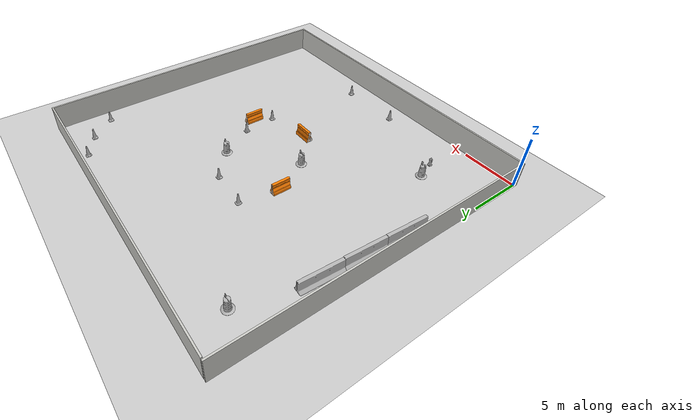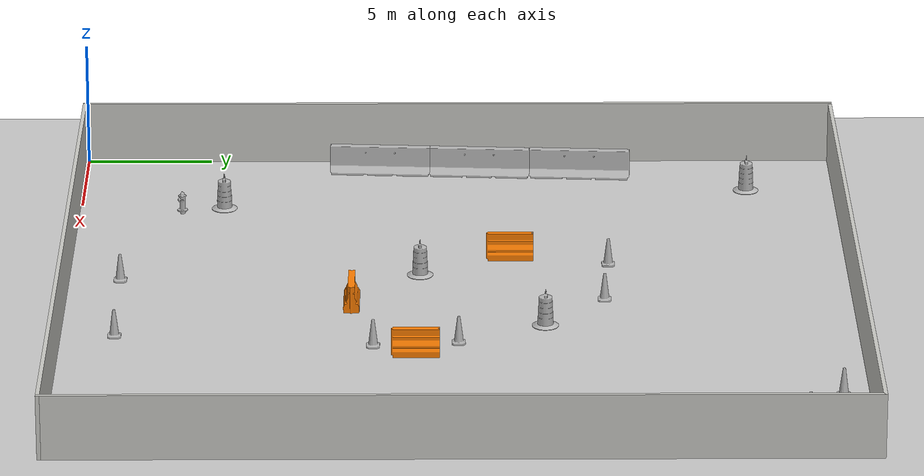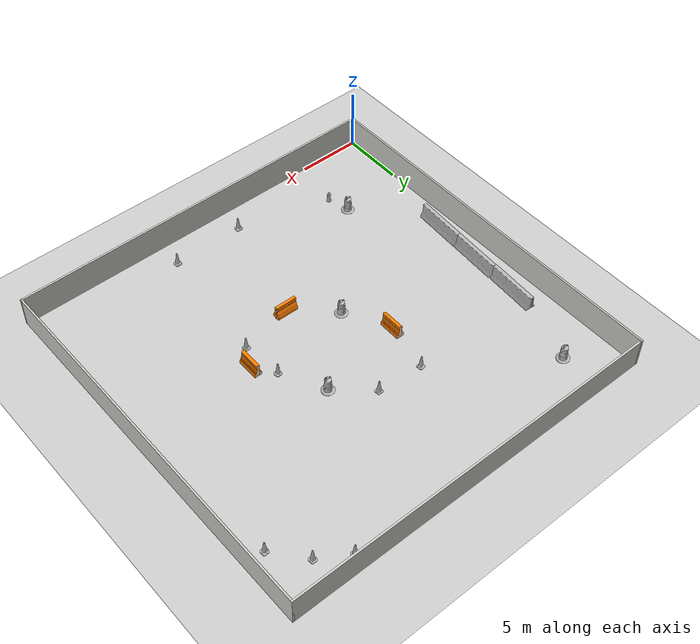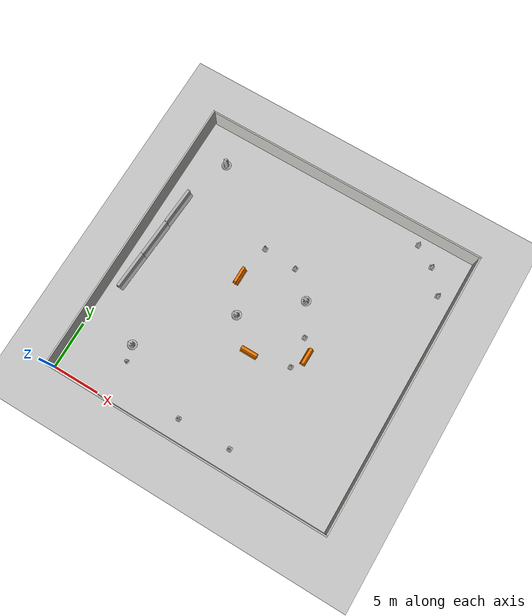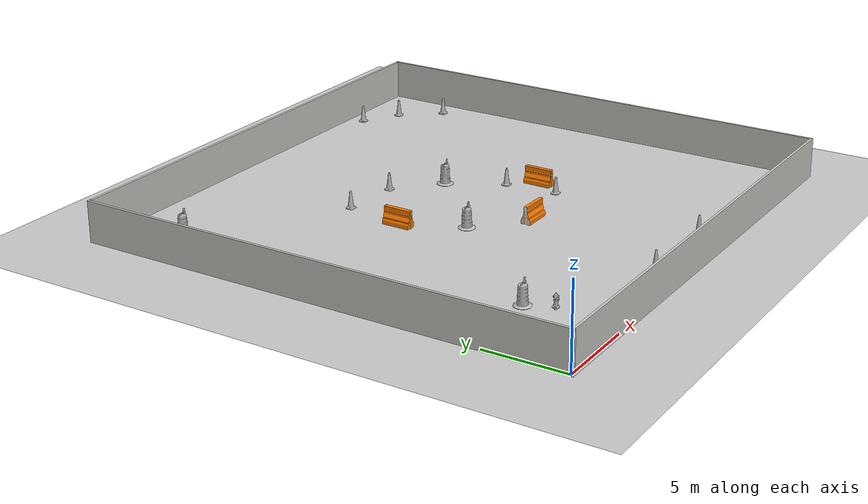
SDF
<sdf version="1.6">
 <world name="default">
  <light name="sun" type="directional">
   <pose>0 0 10 0 -0 0</pose>
   <diffuse>0.8 0.8 0.8 1</diffuse>
   <specular>0.2 0.2 0.2 1</specular>
   <attenuation>
    <range>1000</range>
    <constant>0.9</constant>
    <linear>0.01</linear>
    <quadratic>0.001</quadratic>
   </attenuation>
   <direction>-0.5 0.1 -0.9</direction>
  </light>
  <model name="ground_plane">
   <static>1</static>
   <link name="link">
    <collision name="collision">
     <geometry><plane><normal>0 0 1</normal><size>100 100</size></plane></geometry>
     <surface>
      <contact><collide_bitmask>65535</collide_bitmask></contact>
      <friction><ode><mu>100</mu><mu2>50</mu2></ode></friction>
     </surface>
    </collision>
    <visual name="visual">
     <cast_shadows>0</cast_shadows>
     <geometry><plane><normal>0 0 1</normal><size>100 100</size></plane></geometry>
     <material>
      <script><uri>file://media/materials/scripts/gazebo.material</uri><name>Gazebo/Grey</name></script>
     </material>
    </visual>
   </link>
  </model>
  <gravity>0 0 -9.8</gravity>
  <magnetic_field>6e-06 2.3e-05 -4.2e-05</magnetic_field>
  <atmosphere type="adiabatic"/>
  <physics name="default_physics" default="0" type="ode">
   <max_step_size>0.001</max_step_size>
   <real_time_factor>1</real_time_factor>
   <real_time_update_rate>1000</real_time_update_rate>
  </physics>
  <scene><ambient>0.4 0.4 0.4 1</ambient><background>0.7 0.7 0.7 1</background><shadows>1</shadows></scene>
  <spherical_coordinates>
   <surface_model>EARTH_WGS84</surface_model>
   <latitude_deg>0</latitude_deg>
   <longitude_deg>0</longitude_deg>
   <elevation>0</elevation>
   <heading_deg>0</heading_deg>
  </spherical_coordinates>
  <model name="Untitled">
   <pose>15.1958 15.0368 0 0 -0 0</pose>
   <link name="Wall_0">
    <collision name="Wall_0_Collision">
     <geometry><box><size>30.5 0.15 2.5</size></box></geometry>
     <pose>0 0 1.25 0 -0 0</pose>
    </collision>
    <visual name="Wall_0_Visual">
     <pose>0 0 1.25 0 -0 0</pose>
     <geometry><box><size>30.5 0.15 2.5</size></box></geometry>
     <material>
      <script><uri>file://media/materials/scripts/gazebo.material</uri><name>Gazebo/CeilingTiled</name></script>
      <ambient>1 1 1 1</ambient>
     </material>
     <meta><layer>0</layer></meta>
    </visual>
    <pose>0.124999 15.175 0 0 -0 0</pose>
   </link>
   <link name="Wall_1">
    <collision name="Wall_1_Collision">
     <geometry><box><size>30.5 0.15 2.5</size></box></geometry>
     <pose>0 0 1.25 0 -0 0</pose>
    </collision>
    <visual name="Wall_1_Visual">
     <pose>0 0 1.25 0 -0 0</pose>
     <geometry><box><size>30.5 0.15 2.5</size></box></geometry>
     <material>
      <script><uri>file://media/materials/scripts/gazebo.material</uri><name>Gazebo/CeilingTiled</name></script>
      <ambient>1 1 1 1</ambient>
     </material>
     <meta><layer>0</layer></meta>
    </visual>
    <pose>15.3 0 0 0 -0 -1.5708</pose>
   </link>
   <link name="Wall_2">
    <collision name="Wall_2_Collision">
     <geometry><box><size>30.75 0.15 2.5</size></box></geometry>
     <pose>0 0 1.25 0 -0 0</pose>
    </collision>
    <visual name="Wall_2_Visual">
     <pose>0 0 1.25 0 -0 0</pose>
     <geometry><box><size>30.75 0.15 2.5</size></box></geometry>
     <material>
      <script><uri>file://media/materials/scripts/gazebo.material</uri><name>Gazebo/CeilingTiled</name></script>
      <ambient>1 1 1 1</ambient>
     </material>
     <meta><layer>0</layer></meta>
    </visual>
    <pose>-1e-06 -15.175 0 0 -0 3.14159</pose>
   </link>
   <link name="Wall_3">
    <collision name="Wall_3_Collision">
     <geometry><box><size>30.5 0.15 2.5</size></box></geometry>
     <pose>0 0 1.25 0 -0 0</pose>
    </collision>
    <visual name="Wall_3_Visual">
     <pose>0 0 1.25 0 -0 0</pose>
     <geometry><box><size>30.5 0.15 2.5</size></box></geometry>
     <material>
      <script><uri>file://media/materials/scripts/gazebo.material</uri><name>Gazebo/CeilingTiled</name></script>
      <ambient>1 1 1 1</ambient>
     </material>
     <meta><layer>0</layer></meta>
    </visual>
    <pose>-15.3 0 0 0 -0 1.5708</pose>
   </link>
   <static>1</static>
  </model>
  <model name="Construction Barrel">
   <link name="link">
    <inertial>
     <pose>0 0 0.4 0 -0 0</pose>
     <mass>500</mass>
     <inertia><ixx>51.2096</ixx><iyy>51.2096</iyy><izz>25</izz><ixy>0</ixy><ixz>0</ixz><iyz>0</iyz></inertia>
    </inertial>
    <collision name="collision">
     <geometry><mesh><uri>model://construction_barrel/meshes/construction_barrel.dae</uri></mesh></geometry>
    </collision>
    <visual name="visual">
     <geometry><mesh><uri>model://construction_barrel/meshes/construction_barrel.dae</uri></mesh></geometry>
    </visual>
   </link>
   <pose>5.34222 5.70017 -2e-06 -5e-06 -4e-06 -5.7e-05</pose>
  </model>
  <model name="Construction Cone">
   <link name="link">
    <collision name="collision">
     <geometry>
      <mesh><scale>10 10 10</scale><uri>model://construction_cone/meshes/construction_cone.dae</uri></mesh>
     </geometry>
    </collision>
    <visual name="visual">
     <geometry>
      <mesh><scale>10 10 10</scale><uri>model://construction_cone/meshes/construction_cone.dae</uri></mesh>
     </geometry>
    </visual>
    <inertial>
     <inertia><ixx>1</ixx><ixy>0</ixy><ixz>0</ixz><iyy>1</iyy><iyz>0</iyz><izz>1</izz></inertia>
     <mass>1</mass>
    </inertial>
   </link>
   <pose>13.1332 1.9175 -1e-05 -1e-06 0 0</pose>
  </model>
  <model name="Construction Barrel_0">
   <link name="link">
    <inertial>
     <pose>0 0 0.4 0 -0 0</pose>
     <mass>500</mass>
     <inertia><ixx>51.2096</ixx><iyy>51.2096</iyy><izz>25</izz><ixy>0</ixy><ixz>0</ixz><iyz>0</iyz></inertia>
    </inertial>
    <collision name="collision">
     <geometry><mesh><uri>model://construction_barrel/meshes/construction_barrel.dae</uri></mesh></geometry>
    </collision>
    <visual name="visual">
     <geometry><mesh><uri>model://construction_barrel/meshes/construction_barrel.dae</uri></mesh></geometry>
    </visual>
   </link>
   <pose>3.41373 26.6506 1e-06 3e-06 2e-06 -5.5e-05</pose>
  </model>
  <model name="Construction Cone_0">
   <link name="link">
    <collision name="collision">
     <geometry>
      <mesh><scale>10 10 10</scale><uri>model://construction_cone/meshes/construction_cone.dae</uri></mesh>
     </geometry>
    </collision>
    <visual name="visual">
     <geometry>
      <mesh><scale>10 10 10</scale><uri>model://construction_cone/meshes/construction_cone.dae</uri></mesh>
     </geometry>
    </visual>
    <inertial>
     <inertia><ixx>1</ixx><ixy>0</ixy><ixz>0</ixz><iyy>1</iyy><iyz>0</iyz><izz>1</izz></inertia>
     <mass>1</mass>
    </inertial>
   </link>
   <pose>19.8885 11.766 -0 0 -1e-06 0</pose>
  </model>
  <model name="Construction Cone_1">
   <link name="link">
    <collision name="collision">
     <geometry>
      <mesh><scale>10 10 10</scale><uri>model://construction_cone/meshes/construction_cone.dae</uri></mesh>
     </geometry>
    </collision>
    <visual name="visual">
     <geometry>
      <mesh><scale>10 10 10</scale><uri>model://construction_cone/meshes/construction_cone.dae</uri></mesh>
     </geometry>
    </visual>
    <inertial>
     <inertia><ixx>1</ixx><ixy>0</ixy><ixz>0</ixz><iyy>1</iyy><iyz>0</iyz><izz>1</izz></inertia>
     <mass>1</mass>
    </inertial>
   </link>
   <pose>11.5682 20.8579 -0 0 -1e-06 0</pose>
  </model>
  <model name="Construction Cone_2">
   <link name="link">
    <collision name="collision">
     <geometry>
      <mesh><scale>10 10 10</scale><uri>model://construction_cone/meshes/construction_cone.dae</uri></mesh>
     </geometry>
    </collision>
    <visual name="visual">
     <geometry>
      <mesh><scale>10 10 10</scale><uri>model://construction_cone/meshes/construction_cone.dae</uri></mesh>
     </geometry>
    </visual>
    <inertial>
     <inertia><ixx>1</ixx><ixy>0</ixy><ixz>0</ixz><iyy>1</iyy><iyz>0</iyz><izz>1</izz></inertia>
     <mass>1</mass>
    </inertial>
   </link>
   <pose>19.5923 14.9944 0 -0 -0 -0</pose>
  </model>
  <model name="Construction Cone_3">
   <link name="link">
    <collision name="collision">
     <geometry>
      <mesh><scale>10 10 10</scale><uri>model://construction_cone/meshes/construction_cone.dae</uri></mesh>
     </geometry>
    </collision>
    <visual name="visual">
     <geometry>
      <mesh><scale>10 10 10</scale><uri>model://construction_cone/meshes/construction_cone.dae</uri></mesh>
     </geometry>
    </visual>
    <inertial>
     <inertia><ixx>1</ixx><ixy>0</ixy><ixz>0</ixz><iyy>1</iyy><iyz>0</iyz><izz>1</izz></inertia>
     <mass>1</mass>
    </inertial>
   </link>
   <pose>15.235 20.6143 -1e-05 -1e-06 -0 -0</pose>
  </model>
  <model name="Construction Barrel_1">
   <link name="link">
    <inertial>
     <pose>0 0 0.4 0 -0 0</pose>
     <mass>500</mass>
     <inertia><ixx>51.2096</ixx><iyy>51.2096</iyy><izz>25</izz><ixy>0</ixy><ixz>0</ixz><iyz>0</iyz></inertia>
    </inertial>
    <collision name="collision">
     <geometry><mesh><uri>model://construction_barrel/meshes/construction_barrel.dae</uri></mesh></geometry>
    </collision>
    <visual name="visual">
     <geometry><mesh><uri>model://construction_barrel/meshes/construction_barrel.dae</uri></mesh></geometry>
    </visual>
   </link>
   <pose>17.8467 18.2945 -0 0 -0 -3.8e-05</pose>
  </model>
  <model name="Construction Cone_4">
   <link name="link">
    <collision name="collision">
     <geometry>
      <mesh><scale>10 10 10</scale><uri>model://construction_cone/meshes/construction_cone.dae</uri></mesh>
     </geometry>
    </collision>
    <visual name="visual">
     <geometry>
      <mesh><scale>10 10 10</scale><uri>model://construction_cone/meshes/construction_cone.dae</uri></mesh>
     </geometry>
    </visual>
    <inertial>
     <inertia><ixx>1</ixx><ixy>0</ixy><ixz>0</ixz><iyy>1</iyy><iyz>0</iyz><izz>1</izz></inertia>
     <mass>1</mass>
    </inertial>
   </link>
   <pose>24.728 29.1581 -3e-06 -3e-06 -1e-06 -0</pose>
  </model>
  <model name="Construction Cone_5">
   <link name="link">
    <collision name="collision">
     <geometry>
      <mesh><scale>10 10 10</scale><uri>model://construction_cone/meshes/construction_cone.dae</uri></mesh>
     </geometry>
    </collision>
    <visual name="visual">
     <geometry>
      <mesh><scale>10 10 10</scale><uri>model://construction_cone/meshes/construction_cone.dae</uri></mesh>
     </geometry>
    </visual>
    <inertial>
     <inertia><ixx>1</ixx><ixy>0</ixy><ixz>0</ixz><iyy>1</iyy><iyz>0</iyz><izz>1</izz></inertia>
     <mass>1</mass>
    </inertial>
   </link>
   <pose>26.9832 27.7892 -0 0 -0 0</pose>
  </model>
  <model name="Construction Cone_6">
   <link name="link">
    <collision name="collision">
     <geometry>
      <mesh><scale>10 10 10</scale><uri>model://construction_cone/meshes/construction_cone.dae</uri></mesh>
     </geometry>
    </collision>
    <visual name="visual">
     <geometry>
      <mesh><scale>10 10 10</scale><uri>model://construction_cone/meshes/construction_cone.dae</uri></mesh>
     </geometry>
    </visual>
    <inertial>
     <inertia><ixx>1</ixx><ixy>0</ixy><ixz>0</ixz><iyy>1</iyy><iyz>0</iyz><izz>1</izz></inertia>
     <mass>1</mass>
    </inertial>
   </link>
   <pose>28.913 25.4603 -3e-06 -3e-06 -1e-06 -0</pose>
  </model>
  <model name="Construction Barrel_2">
   <link name="link">
    <inertial>
     <pose>0 0 0.4 0 -0 0</pose>
     <mass>500</mass>
     <inertia><ixx>51.2096</ixx><iyy>51.2096</iyy><izz>25</izz><ixy>0</ixy><ixz>0</ixz><iyz>0</iyz></inertia>
    </inertial>
    <collision name="collision">
     <geometry><mesh><uri>model://construction_barrel/meshes/construction_barrel.dae</uri></mesh></geometry>
    </collision>
    <visual name="visual">
     <geometry><mesh><uri>model://construction_barrel/meshes/construction_barrel.dae</uri></mesh></geometry>
    </visual>
   </link>
   <pose>12.6175 13.5295 1e-06 3e-06 2e-06 -3.2e-05</pose>
  </model>
  <model name="drc_practice_organge_jersey_barrier">
   <static>1</static>
   <link name="link">
    <visual name="visual">
     <geometry>
      <mesh><uri>model://drc_practice_orange_jersey_barrier/meshes/jersey_barrier.dae</uri></mesh>
     </geometry>
    </visual>
    <collision name="collision">
     <geometry>
      <mesh><uri>model://drc_practice_orange_jersey_barrier/meshes/jersey_barrier.dae</uri></mesh>
     </geometry>
    </collision>
   </link>
   <pose>10.856 17.0606 0 0 -0 0</pose>
  </model>
  <model name="drc_practice_organge_jersey_barrier_0">
   <static>1</static>
   <link name="link">
    <visual name="visual">
     <geometry>
      <mesh><uri>model://drc_practice_orange_jersey_barrier/meshes/jersey_barrier.dae</uri></mesh>
     </geometry>
    </visual>
    <collision name="collision">
     <geometry>
      <mesh><uri>model://drc_practice_orange_jersey_barrier/meshes/jersey_barrier.dae</uri></mesh>
     </geometry>
    </collision>
   </link>
   <pose>15.6518 10.9079 0 0 -0 1.57103</pose>
  </model>
  <model name="jersey_barrier">
   <static>1</static>
   <link name="link">
    <visual name="visual">
     <geometry><mesh><uri>model://jersey_barrier/meshes/jersey_barrier.dae</uri></mesh></geometry>
    </visual>
    <collision name="upright">
     <pose>0 0 0.5715 0 -0 0</pose>
     <geometry><box><size>4.06542 0.3063 1.143</size></box></geometry>
    </collision>
    <collision name="base">
     <pose>0 0 0.032258 0 -0 0</pose>
     <geometry><box><size>4.06542 0.8107 0.064516</size></box></geometry>
    </collision>
    <collision name="base2">
     <pose>0 0 0.1 0 -0 0</pose>
     <geometry><box><size>4.06542 0.65 0.1</size></box></geometry>
    </collision>
    <collision name="base3">
     <pose>0 0 0.2 0 -0 0</pose>
     <geometry><box><size>4.06542 0.5 0.1</size></box></geometry>
    </collision>
    <collision name="left-angle">
     <pose>0 -0.224 0.2401 0.9 -0 0</pose>
     <geometry><box><size>4.06542 0.5 0.064516</size></box></geometry>
    </collision>
    <collision name="right-angle">
     <pose>0 0.224 0.2401 -0.9 0 0</pose>
     <geometry><box><size>4.06542 0.5 0.064516</size></box></geometry>
    </collision>
   </link>
   <pose>1.49214 15.9277 0 0 0 -1.63224</pose>
  </model>
  <model name="jersey_barrier_clone">
   <static>1</static>
   <link name="link">
    <visual name="visual">
     <geometry><mesh><uri>model://jersey_barrier/meshes/jersey_barrier.dae</uri></mesh></geometry>
    </visual>
    <collision name="upright">
     <pose>0 0 0.5715 0 -0 0</pose>
     <geometry><box><size>4.06542 0.3063 1.143</size></box></geometry>
    </collision>
    <collision name="base">
     <pose>0 0 0.032258 0 -0 0</pose>
     <geometry><box><size>4.06542 0.8107 0.064516</size></box></geometry>
    </collision>
    <collision name="base2">
     <pose>0 0 0.1 0 -0 0</pose>
     <geometry><box><size>4.06542 0.65 0.1</size></box></geometry>
    </collision>
    <collision name="base3">
     <pose>0 0 0.2 0 -0 0</pose>
     <geometry><box><size>4.06542 0.5 0.1</size></box></geometry>
    </collision>
    <collision name="left-angle">
     <pose>0 -0.224 0.2401 0.9 -0 0</pose>
     <geometry><box><size>4.06542 0.5 0.064516</size></box></geometry>
    </collision>
    <collision name="right-angle">
     <pose>0 0.224 0.2401 -0.9 0 0</pose>
     <geometry><box><size>4.06542 0.5 0.064516</size></box></geometry>
    </collision>
   </link>
   <pose>1.2507 11.9061 0 0 0 -1.63224</pose>
  </model>
  <model name="jersey_barrier_clone_0">
   <static>1</static>
   <link name="link">
    <visual name="visual">
     <geometry><mesh><uri>model://jersey_barrier/meshes/jersey_barrier.dae</uri></mesh></geometry>
    </visual>
    <collision name="upright">
     <pose>0 0 0.5715 0 -0 0</pose>
     <geometry><box><size>4.06542 0.3063 1.143</size></box></geometry>
    </collision>
    <collision name="base">
     <pose>0 0 0.032258 0 -0 0</pose>
     <geometry><box><size>4.06542 0.8107 0.064516</size></box></geometry>
    </collision>
    <collision name="base2">
     <pose>0 0 0.1 0 -0 0</pose>
     <geometry><box><size>4.06542 0.65 0.1</size></box></geometry>
    </collision>
    <collision name="base3">
     <pose>0 0 0.2 0 -0 0</pose>
     <geometry><box><size>4.06542 0.5 0.1</size></box></geometry>
    </collision>
    <collision name="left-angle">
     <pose>0 -0.224 0.2401 0.9 -0 0</pose>
     <geometry><box><size>4.06542 0.5 0.064516</size></box></geometry>
    </collision>
    <collision name="right-angle">
     <pose>0 0.224 0.2401 -0.9 0 0</pose>
     <geometry><box><size>4.06542 0.5 0.064516</size></box></geometry>
    </collision>
   </link>
   <pose>1.70062 19.9784 0 0 0 -1.63224</pose>
  </model>
  <model name="drc_practice_organge_jersey_barrier_1">
   <static>1</static>
   <link name="link">
    <visual name="visual">
     <geometry>
      <mesh><uri>model://drc_practice_orange_jersey_barrier/meshes/jersey_barrier.dae</uri></mesh>
     </geometry>
    </visual>
    <collision name="collision">
     <geometry>
      <mesh><uri>model://drc_practice_orange_jersey_barrier/meshes/jersey_barrier.dae</uri></mesh>
     </geometry>
    </collision>
   </link>
   <pose>20.7262 13.4012 0 0 -0 0</pose>
  </model>
  <model name="Construction Cone_7">
   <link name="link">
    <collision name="collision">
     <geometry>
      <mesh><scale>10 10 10</scale><uri>model://construction_cone/meshes/construction_cone.dae</uri></mesh>
     </geometry>
    </collision>
    <visual name="visual">
     <geometry>
      <mesh><scale>10 10 10</scale><uri>model://construction_cone/meshes/construction_cone.dae</uri></mesh>
     </geometry>
    </visual>
    <inertial>
     <inertia><ixx>1</ixx><ixy>0</ixy><ixz>0</ixz><iyy>1</iyy><iyz>0</iyz><izz>1</izz></inertia>
     <mass>1</mass>
    </inertial>
   </link>
   <pose>18.8559 1.97421 -0 0 -0 0</pose>
  </model>
  <model name="fire_hydrant">
   <static>1</static>
   <link name="link">
    <collision name="collision">
     <geometry><mesh><uri>model://fire_hydrant/meshes/fire_hydrant.dae</uri></mesh></geometry>
    </collision>
    <visual name="visual">
     <geometry><mesh><uri>model://fire_hydrant/meshes/fire_hydrant.dae</uri></mesh></geometry>
    </visual>
   </link>
   <pose>5.85085 4.04036 0 0 -0 0</pose>
  </model>
  <plugin name="ActorPosesPlugin" filename="libActorPosesPlugin.so"/>
 </world>
</sdf>
